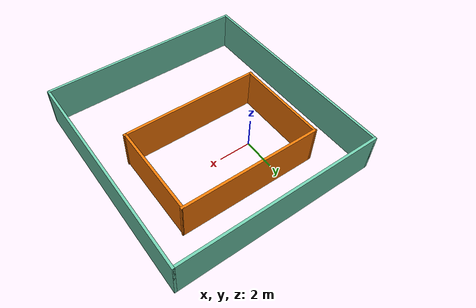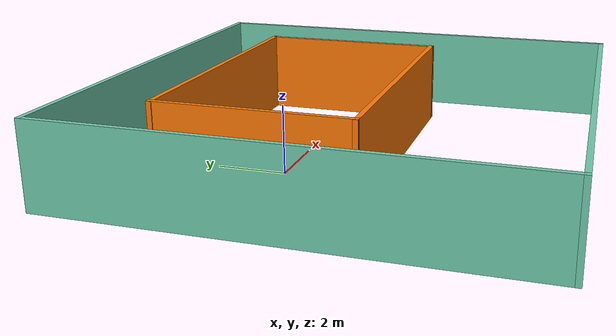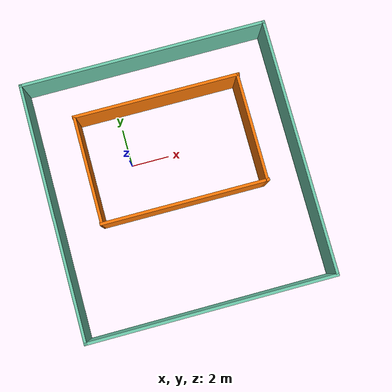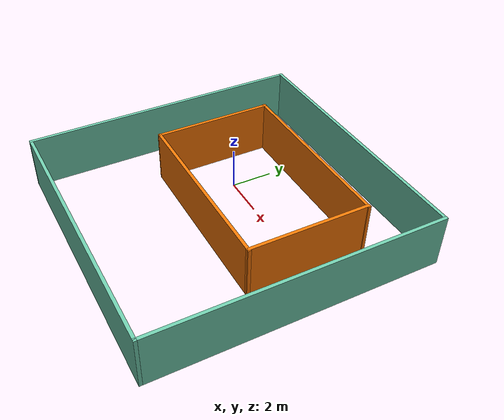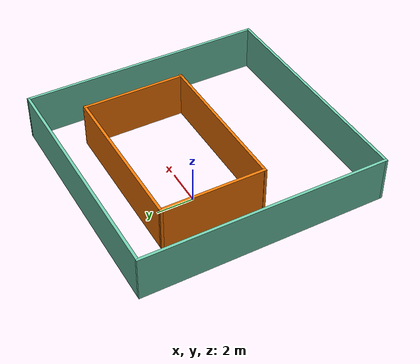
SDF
<?xml version='1.0'?>
<sdf version='1.6'>
  <model name='finalWorld'>
    <pose frame=''>2.04268 -1.56363 0 0 -0 0</pose>
    <link name='Wall_10'>
      <collision name='Wall_10_Collision'>
        <geometry>
          <box>
            <size>5.75 0.15 2.5</size>
          </box>
        </geometry>
        <pose frame=''>0 0 1.25 0 -0 0</pose>
      </collision>
      <visual name='Wall_10_Visual'>
        <pose frame=''>0 0 1.25 0 -0 0</pose>
        <geometry>
          <box>
            <size>5.75 0.15 2.5</size>
          </box>
        </geometry>
        <material>
          <script>
            <uri>file://media/materials/scripts/gazebo.material</uri>
            <name>Gazebo/Grey</name>
          </script>
          <ambient>0.996078 0.47451 0.0196078 1</ambient>
        </material>
      </visual>
      <pose frame=''>4.37585 1.57456 0 0 0 -1.5708</pose>
    </link>
    <link name='Wall_12'>
      <collision name='Wall_12_Collision'>
        <geometry>
          <box>
            <size>8.7814 0.15 2.5</size>
          </box>
        </geometry>
        <pose frame=''>0 0 1.25 0 -0 0</pose>
      </collision>
      <visual name='Wall_12_Visual'>
        <pose frame=''>0 0 1.25 0 -0 0</pose>
        <geometry>
          <box>
            <size>8.7814 0.15 2.5</size>
          </box>
        </geometry>
        <material>
          <script>
            <uri>file://media/materials/scripts/gazebo.material</uri>
            <name>Gazebo/Grey</name>
          </script>
          <ambient>0.996078 0.47451 0.0196078 1</ambient>
        </material>
      </visual>
      <pose frame=''>0.106695 -1.21097 0 0 -0 3.13824</pose>
    </link>
    <link name='Wall_13'>
      <collision name='Wall_13_Collision'>
        <geometry>
          <box>
            <size>5.75 0.15 2.5</size>
          </box>
        </geometry>
        <pose frame=''>0 0 1.25 0 -0 0</pose>
      </collision>
      <visual name='Wall_13_Visual'>
        <pose frame=''>0 0 1.25 0 -0 0</pose>
        <geometry>
          <box>
            <size>5.75 0.15 2.5</size>
          </box>
        </geometry>
        <material>
          <script>
            <uri>file://media/materials/scripts/gazebo.material</uri>
            <name>Gazebo/Grey</name>
          </script>
          <ambient>0.996078 0.47451 0.0196078 1</ambient>
        </material>
      </visual>
      <pose frame=''>-4.18585 1.6035 0 0 -0 1.5708</pose>
    </link>
    <link name='Wall_3'>
      <collision name='Wall_3_Collision'>
        <geometry>
          <box>
            <size>13.5 0.15 2.5</size>
          </box>
        </geometry>
        <pose frame=''>0 0 1.25 0 -0 0</pose>
      </collision>
      <visual name='Wall_3_Visual'>
        <pose frame=''>0 0 1.25 0 -0 0</pose>
        <geometry>
          <box>
            <size>13.5 0.15 2.5</size>
          </box>
        </geometry>
        <material>
          <script>
            <uri>file://media/materials/scripts/gazebo.material</uri>
            <name>Gazebo/Grey</name>
          </script>
          <ambient>0.435294 0.796078 0.67451 1</ambient>
        </material>
      </visual>
      <pose frame=''>-6.425 0 0 0 -0 1.5708</pose>
    </link>
    <link name='Wall_4'>
      <collision name='Wall_4_Collision'>
        <geometry>
          <box>
            <size>13 0.15 2.5</size>
          </box>
        </geometry>
        <pose frame=''>0 0 1.25 0 -0 0</pose>
      </collision>
      <visual name='Wall_4_Visual'>
        <pose frame=''>0 0 1.25 0 -0 0</pose>
        <geometry>
          <box>
            <size>13 0.15 2.5</size>
          </box>
        </geometry>
        <material>
          <script>
            <uri>file://media/materials/scripts/gazebo.material</uri>
            <name>Gazebo/Grey</name>
          </script>
          <ambient>0.435294 0.796078 0.67451 1</ambient>
        </material>
      </visual>
      <pose frame=''>0 6.675 0 0 -0 0</pose>
    </link>
    <link name='Wall_5'>
      <collision name='Wall_5_Collision'>
        <geometry>
          <box>
            <size>13.5 0.15 2.5</size>
          </box>
        </geometry>
        <pose frame=''>0 0 1.25 0 -0 0</pose>
      </collision>
      <visual name='Wall_5_Visual'>
        <pose frame=''>0 0 1.25 0 -0 0</pose>
        <geometry>
          <box>
            <size>13.5 0.15 2.5</size>
          </box>
        </geometry>
        <material>
          <script>
            <uri>file://media/materials/scripts/gazebo.material</uri>
            <name>Gazebo/Grey</name>
          </script>
          <ambient>0.435294 0.796078 0.67451 1</ambient>
        </material>
      </visual>
      <pose frame=''>6.425 0 0 0 0 -1.5708</pose>
    </link>
    <link name='Wall_6'>
      <collision name='Wall_6_Collision'>
        <geometry>
          <box>
            <size>13 0.15 2.5</size>
          </box>
        </geometry>
        <pose frame=''>0 0 1.25 0 -0 0</pose>
      </collision>
      <visual name='Wall_6_Visual'>
        <pose frame=''>0 0 1.25 0 -0 0</pose>
        <geometry>
          <box>
            <size>13 0.15 2.5</size>
          </box>
        </geometry>
        <material>
          <script>
            <uri>file://media/materials/scripts/gazebo.material</uri>
            <name>Gazebo/Grey</name>
          </script>
          <ambient>0.435294 0.796078 0.67451 1</ambient>
        </material>
      </visual>
      <pose frame=''>0 -6.675 0 0 -0 3.14159</pose>
    </link>
    <link name='Wall_9'>
      <collision name='Wall_9_Collision'>
        <geometry>
          <box>
            <size>8.7814 0.15 2.5</size>
          </box>
        </geometry>
        <pose frame=''>0 0 1.25 0 -0 0</pose>
      </collision>
      <visual name='Wall_9_Visual'>
        <pose frame=''>0 0 1.25 0 -0 0</pose>
        <geometry>
          <box>
            <size>8.7814 0.15 2.5</size>
          </box>
        </geometry>
        <material>
          <script>
            <uri>file://media/materials/scripts/gazebo.material</uri>
            <name>Gazebo/Grey</name>
          </script>
          <ambient>0.996078 0.47451 0.0196078 1</ambient>
        </material>
      </visual>
      <pose frame=''>0.106695 4.38903 0 0 0 -0.003352</pose>
    </link>
    <static>1</static>
  </model>
</sdf>
